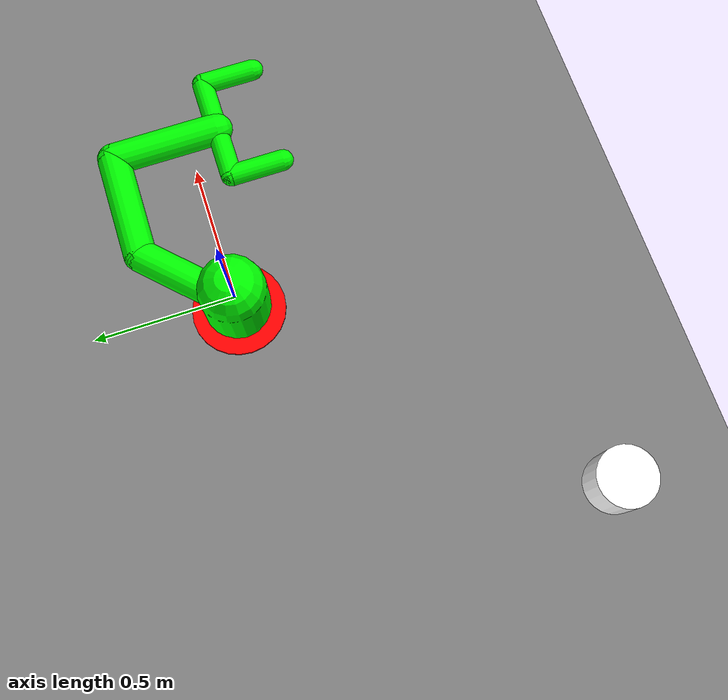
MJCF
<mujoco model="arm3d">
    <compiler angle="radian" coordinate="local" inertiafromgeom="true" />
    <custom>
        <numeric name="frame_skip" data="5" />
    </custom>
    <option gravity="0 0 0" integrator="Euler" iterations="20" timestep="0.01" />

    <default>
        <joint armature="0.04" damping="1" limited="true" />
        <geom conaffinity="1" condim="1" contype="1" density="300" friction=".8 .1 .1" margin="0.002" />
    </default>

    <worldbody>
        <light diffuse=".5 .5 .5" dir="0 0 -1" pos="0 0 3" />
        <geom conaffinity="1" contype="1" pos="0 0.5 -0.15" size="2 2 0.1" type="plane" />

        <body name="palm" pos="0 0 0">
            <geom fromto="0 0 -0.1 0 0 0.1" rgba="0. 1. 0. 1" size="0.12" type="capsule" />
            <body axisangle="0 0 1 0.785" name="proximal_1" pos="0 0 -0.075">
                <joint axis="0 0 1" damping="1.0" name="proximal_j_1" pos="0 0 0" range="-2.5 2.5" type="hinge" />
                <geom conaffinity="1" contype="1" fromto="0 0 0 0.4 0 0" rgba="0. 1. 0. 1" size="0.06" type="capsule" />
                <body axisangle="0 0 1 -0.785" name="distal_1" pos="0.4 0 0">
                    <joint axis="0 0 1" damping="1.0" name="distal_j_1" pos="0 0 0" range="-2.3213 2.3" type="hinge" />
                    <geom conaffinity="1" contype="1" fromto="0 0 0 0.4 0 0" rgba="0. 1. 0. 1" size="0.06" type="capsule" />
                    <body axisangle="0 0 1 -1.57" name="distal_2" pos="0.4 0 0">
                        <joint axis="0 0 1" damping="1.0" name="distal_j_2" pos="0 0 0" range="-2.3213 2.3" type="hinge" />
                        <geom conaffinity="1" contype="1" fromto="0 0 0 0.4 0 0" rgba="0. 1. 0. 1" size="0.06" type="capsule" />
                        <body name="distal_4" pos="0.4 0 0">
                            <site name="tip arml" pos="0.1 -0.2 0" size="0.01" />
                            <site name="tip armr" pos="0.1 0.2 0" size="0.01" />

                            <geom conaffinity="1" contype="1" fromto="0 -0.2 0 0 0.2 0" rgba="0. 1. 0. 1" size="0.04" type="capsule" />
                            <geom conaffinity="1" contype="1" fromto="0 -0.2 0 0.2 -0.2 0" rgba="0. 1. 0. 1" size="0.04" type="capsule" />
                            <geom conaffinity="1" contype="1" fromto="0 0.2 0 0.2 0.2 0" rgba="0. 1. 0. 1" size="0.04" type="capsule" />
                        </body>
                    </body>
                </body>
            </body>
        </body>

        <body name="object" pos="-1 -1 0.1">

            <geom conaffinity="1" contype="1" density="0.00001" rgba="1. 1. 1. 1" size="0.1 0.1 0.1" type="cylinder" />
            <joint axis="0 1 0" damping="0.5" name="obj_slidey" pos="0.025 0.025 0.025" range="-10.3213 10.3" type="slide" />
            <joint axis="1 0 0" damping="0.5" name="obj_slidex" pos="0.025 0.025 0.025" range="-10.3213 10.3" type="slide" />
        </body>

        <body name="goal" pos="0 0 -0.145">

            <geom conaffinity="0" contype="0" density="0.00001" rgba="1. 0. 0. 1" size="0.17 0.005 0.2" type="cylinder" />
            <joint axis="0 1 0" damping="0.5" name="goal_slidey" pos="0 0 0" range="-10.3213 10.3" type="slide" />
            <joint axis="1 0 0" damping="0.5" name="goal_slidex" pos="0 0 0" range="-10.3213 10.3" type="slide" />
        </body>

    </worldbody>

    <actuator>
        <motor ctrllimited="true" ctrlrange="-3 3" joint="proximal_j_1" />
        <motor ctrllimited="true" ctrlrange="-3 3" joint="distal_j_1" />
        <motor ctrllimited="true" ctrlrange="-3 3" joint="distal_j_2" />

    </actuator>
</mujoco>
